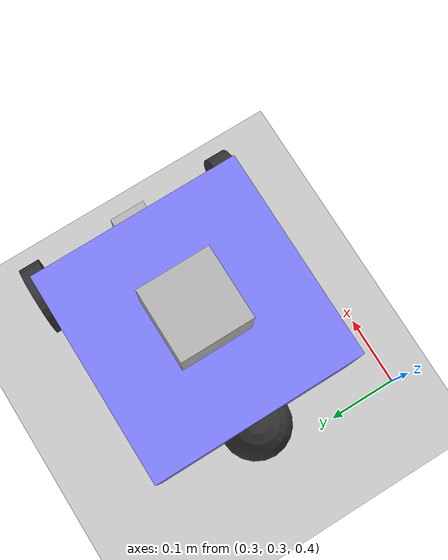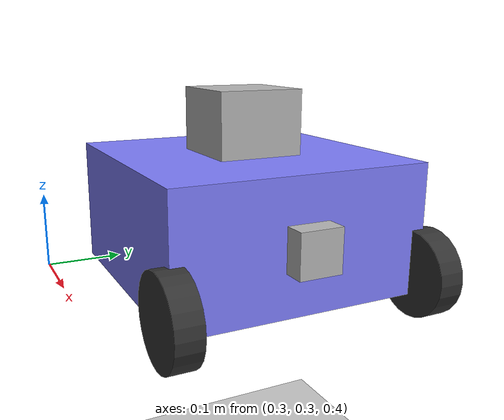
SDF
<sdf version="1.8">
 <world name="demo">
  <plugin filename="ignition-gazebo-physics-system" name="ignition::gazebo::systems::Physics"/>
  <plugin filename="ignition-gazebo-sensors-system" name="ignition::gazebo::systems::Sensors">
   <render_engine>ogre2</render_engine>
  </plugin>
  <plugin filename="ignition-gazebo-scene-broadcaster-system" name="ignition::gazebo::systems::SceneBroadcaster"/>
  <plugin filename="ignition-gazebo-user-commands-system" name="ignition::gazebo::systems::UserCommands"/>
  <plugin filename="BasicSystem" name="ros_gz_example_gazebo::BasicSystem"/>
  <plugin filename="FullSystem" name="ros_gz_example_gazebo::FullSystem"/>
  <physics name="10ms" type="ode">
   <max_step_size>0.01</max_step_size>
   <real_time_factor>1.0</real_time_factor>
  </physics>
  <light name="sun" type="directional">
   <pose>0 0 10 0 0 0</pose>
   <diffuse>0.8 0.8 0.8 1</diffuse>
   <specular>0.2 0.2 0.2 1</specular>
   <attenuation>
    <range>1000</range>
    <constant>0.9</constant>
    <linear>0.01</linear>
    <quadratic>0.001</quadratic>
   </attenuation>
   <direction>-0.5 0.1 -0.9</direction>
  </light>
  <model name="ground_plane">
   <static>true</static>
   <link name="link">
    <collision name="collision">
     <geometry><plane><normal>0 0 1</normal><size>100 100</size></plane></geometry>
    </collision>
    <visual name="visual">
     <geometry><plane><normal>0 0 1</normal><size>100 100</size></plane></geometry>
     <material>
      <ambient>0.8 0.8 0.8 1</ambient>
      <diffuse>0.8 0.8 0.8 1</diffuse>
      <specular>0.8 0.8 0.8 1</specular>
     </material>
    </visual>
   </link>
  </model>
  <model name="diff_drive">
   <self_collide>true</self_collide>
   <pose>0.5 0.5 0.35 0 0 0</pose>
   <include merge="true"><uri>package://ros_gz_example_description/models/diff_drive</uri></include>
   <plugin filename="ignition-gazebo-joint-state-publisher-system" name="ignition::gazebo::systems::JointStatePublisher"/>
   <plugin filename="ignition-gazebo-pose-publisher-system" name="ignition::gazebo::systems::PosePublisher">
    <publish_link_pose>true</publish_link_pose>
    <use_pose_vector_msg>true</use_pose_vector_msg>
    <static_publisher>true</static_publisher>
    <static_update_frequency>1</static_update_frequency>
   </plugin>
   <plugin filename="ignition-gazebo-odometry-publisher-system" name="ignition::gazebo::systems::OdometryPublisher">
    <odom_frame>diff_drive/odom</odom_frame>
    <robot_base_frame>diff_drive</robot_base_frame>
   </plugin>
  </model>
 </world>
</sdf>

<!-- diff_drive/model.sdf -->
<sdf version="1.8">
    <model name='diff_drive'  canonical_link="base_link">

      <link name='base_link'>
      </link>
      <joint name='base_joint' type='fixed'>
        <parent>base_link</parent>
        <child>chassis</child>
      </joint>

      <link name='chassis'>
        <pose>0 0 0.15 0 -0 0</pose>
        <inertial>
          <mass>1</mass>
          <inertia>
              <ixx>0.009375</ixx>
              <ixy>0</ixy>
              <ixz>0</ixz>
              <iyy>0.015</iyy>
              <iyz>0</iyz>
              <izz>0.009375</izz>
          </inertia>
        </inertial>
        <visual name='visual_chassis'>
          <geometry>
            <box>
              <size>0.3 0.3 0.15</size>
            </box>
          </geometry>
          <material>
            <ambient>0.5 0.5 1.0 1</ambient>
            <diffuse>0.5 0.5 1.0 1</diffuse>
            <specular>0.0 0.0 1.0 1</specular>
          </material>
        </visual>
        <collision name='collision_chassis'>
          <geometry>
            <box>
              <size>0.3 0.3 0.15</size>
            </box>
          </geometry>
        </collision>
      </link>

      <link name='left_wheel'>
        <pose>0.15 0.15 0.10 -1.5707 0 0</pose>
        <inertial>
          <mass>0.3</mass>
          <inertia>
              <ixx>0.0012</ixx>
              <ixy>0</ixy>
              <ixz>0</ixz>
              <iyy>0.0012</iyy>
              <iyz>0</iyz>
              <izz>0.0012</izz>
          </inertia>
        </inertial>
        <visual name='visual_left_wheel'>
          <geometry>
            <cylinder>
              <radius>0.05</radius>
              <length>0.03</length>
            </cylinder>
          </geometry>
          <material>
            <ambient>0.2 0.2 0.2 1</ambient>
            <diffuse>0.2 0.2 0.2 1</diffuse>
            <specular>0.2 0.2 0.2 1</specular>
          </material>
        </visual>
        <collision name='collision_left_wheel'>
          <geometry>
            <cylinder>
              <radius>0.05</radius>
              <length>0.03</length>
            </cylinder>
          </geometry>
        </collision>
      </link>

      <link name='right_wheel'>
        <pose>0.15 -0.15 0.10 -1.5707 0 0</pose>
        <inertial>
          <mass>0.3</mass>
          <inertia>
              <ixx>0.0012</ixx>
              <ixy>0</ixy>
              <ixz>0</ixz>
              <iyy>0.0012</iyy>
              <iyz>0</iyz>
              <izz>0.0012</izz>
          </inertia>
        </inertial>
        <visual name='visual_right_wheel'>
          <geometry>
            <cylinder>
              <radius>0.05</radius>
              <length>0.03</length>
            </cylinder>
          </geometry>
          <material>
            <ambient>0.2 0.2 0.2 1</ambient>
            <diffuse>0.2 0.2 0.2 1</diffuse>
            <specular>0.2 0.2 0.2 1</specular>
          </material>
        </visual>
        <collision name='collision_right_wheel'>
          <geometry>
            <cylinder>
              <radius>0.05</radius>
              <length>0.03</length>
            </cylinder>
          </geometry>
        </collision>
      </link>

      <link name='caster'>
        <pose>-0.15 0 0.10 0 -0 0</pose>
        <inertial>
          <mass>0.1</mass>
          <inertia>
            <ixx>0.0001</ixx>
            <ixy>0</ixy>
            <ixz>0</ixz>
            <iyy>0.0001</iyy>
            <iyz>0</iyz>
            <izz>0.0001</izz>
          </inertia>
        </inertial>
        <visual name='visual_caster'>
          <geometry>
            <sphere>
              <radius>0.05</radius>
            </sphere>
          </geometry>
          <material>
            <ambient>0.2 0.2 0.2 1</ambient>
            <diffuse>0.2 0.2 0.2 1</diffuse>
            <specular>0.2 0.2 0.2 1</specular>
          </material>
        </visual>
        <collision name='collision_caster'>
          <geometry>
            <sphere>
              <radius>0.05</radius>
            </sphere>
          </geometry>
        </collision>
      </link>

      <link name="lidar_link">
        <pose>0 0 0.25 0 0 0</pose>
        <inertial>
          <mass>0.1</mass>
          <inertia>
            <ixx>0.000166667</ixx>
            <iyy>0.000166667</iyy>
            <izz>0.000166667</izz>
          </inertia>
        </inertial>
        <collision name="collision">
          <geometry>
            <box>
              <size>0.1 0.1 0.1</size>
            </box>
          </geometry>
        </collision>
        <visual name="visual">
          <geometry>
            <box>
              <size>0.1 0.1 0.1</size>
            </box>
          </geometry>
        </visual>
        <sensor name='gpu_lidar' type='gpu_lidar'>
          <pose>0 0 0 0 0 0</pose>
          <topic>scan</topic>
          <ignition_frame_id>diff_drive/lidar_link</ignition_frame_id>
          <update_rate>10</update_rate>
          <lidar>
            <scan>
              <horizontal>
                <samples>360</samples>
                <resolution>1</resolution>
                <min_angle>-3.14</min_angle>
                <max_angle>3.14</max_angle>
              </horizontal>
              <vertical>
                <samples>1</samples>
                <resolution>1</resolution>
                <min_angle>0.0</min_angle>
                <max_angle>0.0</max_angle>
              </vertical>
            </scan>
            <range>
              <min>0.08</min>
              <max>12.0</max>
              <resolution>0.01</resolution>
            </range>
            <noise>
              <type>gaussian</type>
              <mean>0.0</mean>
              <stddev>0.01</stddev>
            </noise>
          </lidar>
          <visualize>true</visualize>
        </sensor>
      </link>

      <link name="camera_link">
        <pose>0.15 0 0.15 0 0 0</pose>
        <inertial>
          <mass>0.1</mass>
          <inertia>
            <ixx>0.000166667</ixx>
            <iyy>0.000166667</iyy>
            <izz>0.000166667</izz>
          </inertia>
        </inertial>
        <collision name="collision">
          <geometry>
            <box>
              <size>0.05 0.05 0.05</size>
            </box>
          </geometry>
        </collision>
        <visual name="visual">
          <geometry>
            <box>
              <size>0.05 0.05 0.05</size>
            </box>
          </geometry>
        </visual>
        <sensor name="camera" type="camera">
          <camera>
            <horizontal_fov>1.417</horizontal_fov>
            <image>
              <width>1280</width>
              <height>800</height>
            </image>
            <clip>
              <near>0.1</near>
              <far>200</far>
            </clip>
            <noise>
              <type>gaussian</type>
              <mean>0.0</mean>
              <stddev>0.01</stddev>
            </noise>
          </camera>
          <always_on>1</always_on>
          <update_rate>120</update_rate>
          <visualize>true</visualize>
          <topic>camera</topic>
        </sensor>
      </link>

      <joint name='camera_joint' type='fixed'>
        <parent>chassis</parent>
        <child>camera_link</child>
      </joint>

      <joint name='lidar_joint' type='fixed'>
        <parent>chassis</parent>
        <child>lidar_link</child>
      </joint>

      <joint name='left_wheel_joint' type='revolute'>
        <parent>chassis</parent>
        <child>left_wheel</child>
        <axis>
          <xyz>0 0 1</xyz>
          <limit>
            <lower>-1.79769e+308</lower>
            <upper>1.79769e+308</upper>
          </limit>
        </axis>
      </joint>

      <joint name='right_wheel_joint' type='revolute'>
        <parent>chassis</parent>
        <child>right_wheel</child>
        <axis>
          <xyz>0 0 1</xyz>
          <limit>
            <lower>-1.79769e+308</lower>
            <upper>1.79769e+308</upper>
          </limit>
        </axis>
      </joint>

      <joint name='caster_wheel' type='ball'>
        <parent>chassis</parent>
        <child>caster</child>
      </joint>

      <plugin
        filename="ignition-gazebo-diff-drive-system"
        name="ignition::gazebo::systems::DiffDrive">
        <left_joint>left_wheel_joint</left_joint>
        <right_joint>right_wheel_joint</right_joint>
        <wheel_separation>0.3</wheel_separation>
        <wheel_radius>0.05</wheel_radius>
        <odom_publish_frequency>1</odom_publish_frequency>
        <max_linear_acceleration>1</max_linear_acceleration>
        <min_linear_acceleration>-1</min_linear_acceleration>
        <max_angular_acceleration>2</max_angular_acceleration>
        <min_angular_acceleration>-2</min_angular_acceleration>
        <max_linear_velocity>0.5</max_linear_velocity>
        <min_linear_velocity>-0.5</min_linear_velocity>
        <max_angular_velocity>1</max_angular_velocity>
        <min_angular_velocity>-1</min_angular_velocity>
      </plugin>
    </model>
</sdf>
